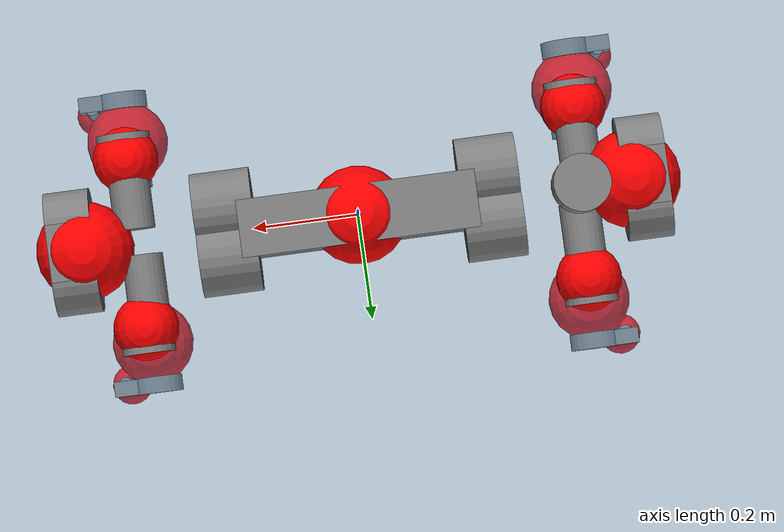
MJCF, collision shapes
<mujoco model="anymal_c">
  <compiler angle="radian" assetdir="assets" balanceinertia="true" inertiafromgeom="false"/>

  <option timestep="0.005" density="1.2" viscosity="2e-05"/>

  <size nkey="1"/>

  <visual>
    <quality shadowsize="8192"/>
    <map shadowclip="0.5"/>
  </visual>

  <default>
    <default class="/">
      <material specular="0" shininess="0.25"/>
      <geom contype="0" conaffinity="0" group="1" solref="-1000 -80"/>
      <site size="0.01 0.005 0.005" group="5"/>
      <general forcelimited="true" forcerange="-80 80" biastype="affine" gainprm="80" biasprm="0 -80 -2"/>
      <default class="anymal_c">
        <joint armature="0.01" damping="0.01" frictionloss="0.1"/>
        <default class="visual">
          <geom type="mesh" group="2"/>
          <default class="visual_zflip"/>
        </default>
        <default class="collision">
          <geom type="cylinder" group="3"/>
          <default class="foot">
            <geom size="0.03 0 0" type="sphere" condim="6" priority="1" friction="0.8 0.02 0.01" solimp="0.015 1 0.03"/>
          </default>
        </default>
      </default>
      <default class="reward_collision_sphere">
        <geom group="5" rgba="1 0 0 1"/>
      </default>
    </default>
  </default>

  <asset>
    <texture type="skybox" colorspace="auto" name="//unnamed_texture_0" builtin="gradient" rgb1="0.95 0.95 0.95" rgb2="0.95 0.95 0.95" width="100" height="600"/>
    <texture type="2d" colorspace="auto" name="texplane" builtin="checker" rgb1="0.345 0.575 0.748" rgb2="0.345 0.575 0.748" markrgb="1 1 1" width="512" height="512"/>
    <texture type="2d" colorspace="linear" name="base" file="base.png"/>
    <texture type="2d" colorspace="linear" name="top_shell" file="top_shell.png"/>
    <texture type="2d" colorspace="linear" name="bottom_shell" file="bottom_shell.png"/>
    <texture type="2d" colorspace="linear" name="remote" file="remote.png"/>
    <texture type="2d" colorspace="linear" name="hatch" file="hatch.png"/>
    <texture type="2d" colorspace="linear" name="handle" file="handle.png"/>
    <texture type="2d" colorspace="linear" name="face" file="face.png"/>
    <texture type="2d" colorspace="linear" name="battery" file="battery.png"/>
    <texture type="2d" colorspace="linear" name="lidar_cage" file="lidar_cage.png"/>
    <texture type="2d" colorspace="linear" name="depth_camera" file="depth_camera.png"/>
    <texture type="2d" colorspace="linear" name="wide_angle_camera" file="wide_angle_camera.png"/>
    <texture type="2d" colorspace="linear" name="lidar" file="lidar.png"/>
    <texture type="2d" colorspace="linear" name="drive" file="drive.png"/>
    <texture type="2d" colorspace="linear" name="hip_l" file="hip_l.png"/>
    <texture type="2d" colorspace="linear" name="shank_l" file="shank_l.png"/>
    <texture type="2d" colorspace="linear" name="foot" file="foot.png"/>
    <texture type="2d" colorspace="linear" name="thigh" file="thigh.png"/>
    <texture type="2d" colorspace="linear" name="shank_r" file="shank_r.png"/>
    <texture type="2d" colorspace="linear" name="hip_r" file="hip_r.png"/>
    <material name="MatPlane" class="/" texture="texplane" texuniform="true" texrepeat="2 2" specular="0.9" shininess="0.5"/>
    <material name="black_plastic" class="/" rgba="0.007 0.007 0.007 1"/>
    <material name="green" class="/" rgba="0.052 0.178 0.033 1"/>
    <material name="red" class="/" rgba="0.178 0.006 0.005 1"/>
    <material name="yellow" class="/" rgba="0.178 0.119 0.006 1"/>
    <material name="lwl" class="/" rgba="0.8 0.8 0.8 1"/>
    <material name="base" class="/" texture="base"/>
    <material name="top_shell" class="/" texture="top_shell"/>
    <material name="bottom_shell" class="/" texture="bottom_shell"/>
    <material name="hip_l" class="/" texture="hip_l"/>
    <material name="thigh" class="/" texture="thigh"/>
    <material name="shank_l" class="/" texture="shank_l"/>
    <material name="foot" class="/" texture="foot"/>
    <material name="hip_r" class="/" texture="hip_r"/>
    <material name="shank" class="/" texture="shank_r"/>
    <material name="hatch" class="/" texture="hatch"/>
    <material name="remote" class="/" texture="remote"/>
    <material name="handle" class="/" texture="handle"/>
    <material name="face" class="/" texture="face"/>
    <material name="depth_camera" class="/" texture="depth_camera"/>
    <material name="wide_angle_camera" class="/" texture="wide_angle_camera"/>
    <material name="battery" class="/" texture="battery"/>
    <material name="lidar_cage" class="/" texture="lidar_cage"/>
    <material name="lidar" class="/" texture="lidar"/>
    <material name="drive" class="/" texture="drive"/>
    <mesh name="base_0" class="/" file="base_0.obj"/>
    <mesh name="base_1" class="/" file="base_1.obj"/>
    <mesh name="base_2" class="/" file="base_2.obj"/>
    <mesh name="base_3" class="/" file="base_3.obj"/>
    <mesh name="base_4" class="/" file="base_4.obj"/>
    <mesh name="base_5" class="/" file="base_5.obj"/>
    <mesh name="top_shell" class="/" file="top_shell.obj"/>
    <mesh name="bottom_shell" class="/" file="bottom_shell.obj"/>
    <mesh name="remote" class="/" file="remote.obj"/>
    <mesh name="handle" class="/" file="handle.obj"/>
    <mesh name="face" class="/" file="face.obj"/>
    <mesh name="wide_angle_camera" class="/" file="wide_angle_camera.obj"/>
    <mesh name="depth_camera" class="/" file="depth_camera.obj"/>
    <mesh name="battery" class="/" file="battery.obj"/>
    <mesh name="lidar_cage" class="/" file="lidar_cage.obj"/>
    <mesh name="lidar" class="/" file="lidar.obj"/>
    <mesh name="drive" class="/" file="drive.obj"/>
    <mesh name="hip_l" class="/" file="hip_l.obj"/>
    <mesh name="thigh" class="/" file="thigh.obj"/>
    <mesh name="shank_l" class="/" file="shank_l.obj"/>
    <mesh name="foot" class="/" file="foot.obj"/>
    <mesh name="hip_r" class="/" file="hip_r.obj"/>
    <mesh name="hatch" class="/" file="hatch.obj"/>
    <mesh name="shank_r" class="/" file="shank_r.obj"/>
  </asset>

  <worldbody>
    <geom name="floor" class="/" size="100 100 0.125" type="plane" group="0" material="MatPlane"/>
    <light name="toplight_shadow" class="/" pos="0 0 5" dir="0.0990148 0.0990148 -0.990148" type="directional" ambient="0.04 0.04 0.04" diffuse="0.55 0.55 0.55" specular="0.12 0.12 0.12"/>
    <light name="toplight_fill" class="/" pos="0 0 5" dir="0.0990148 0.0990148 -0.990148" type="directional" castshadow="false" ambient="0.04 0.04 0.04" diffuse="0.3 0.3 0.3" specular="0.08 0.08 0.08"/>
    <body name="trunk" childclass="anymal_c" pos="-0.00056266 0.00143681 0.0126989" quat="0.999983 -0.00339956 0.00361151 -0.0030853">
      <inertial pos="0.00292389 -0.00987287 0.024287" quat="0.466074 0.531201 0.522886 0.476645" mass="8.39791" diaginertia="1.11948 0.0775337 0.00570521"/>
      <joint name="//unnamed_joint_0" type="free" armature="0" damping="0" frictionloss="0"/>
      <geom name="//unnamed_geom_1" class="visual" material="green" mesh="base_0"/>
      <geom name="//unnamed_geom_2" class="visual" material="yellow" mesh="base_1"/>
      <geom name="//unnamed_geom_3" class="visual" material="red" mesh="base_2"/>
      <geom name="//unnamed_geom_4" class="visual" material="black_plastic" mesh="base_3"/>
      <geom name="//unnamed_geom_5" class="visual" material="lwl" mesh="base_4"/>
      <geom name="//unnamed_geom_6" class="visual" material="base" mesh="base_5"/>
      <geom name="trunk_1" class="collision" size="0.226155 0.0545892 0.0701861" type="box"/>
      <geom name="trunk_2" class="collision" size="0.0701861 0.0565388" pos="0.252122 0.0476401 0" quat="0.707107 0 0.707107 0"/>
      <geom name="trunk_3" class="collision" size="0.0701861 0.0565388" pos="-0.252122 0.0476401 0" quat="0.707107 0 0.707107 0"/>
      <geom name="trunk_4" class="collision" size="0.0701861 0.0565388" pos="0.252122 -0.0476401 0" quat="0.707107 0 0.707107 0"/>
      <geom name="trunk_5" class="collision" size="0.0701861 0.0565388" pos="-0.252122 -0.0476401 0" quat="0.707107 0 0.707107 0"/>
      <geom name="//unnamed_geom_12" class="visual" material="top_shell" mesh="top_shell"/>
      <geom name="//unnamed_geom_13" class="visual" material="bottom_shell" mesh="bottom_shell"/>
      <geom name="//unnamed_geom_14" class="visual" material="remote" mesh="remote"/>
      <geom name="//unnamed_geom_15" class="visual" material="handle" mesh="handle"/>
      <geom name="//unnamed_geom_16" class="visual" pos="0.480481 0 0" quat="1 0 0 0" material="face" mesh="face"/>
      <geom name="trunk_6" class="collision" size="0.0428915 0.0545892 0.0701861" pos="0.544236 0 0" type="box"/>
      <geom name="//unnamed_geom_18" class="collision" size="0.0701861 0.0428915" pos="0.544236 0.0476401 0" quat="0.707107 0 0.707107 0"/>
      <geom name="//unnamed_geom_19" class="collision" size="0.0701861 0.0428915" pos="0.544236 -0.0476401 0" quat="0.707107 0 0.707107 0"/>
      <geom name="//unnamed_geom_20" class="visual" pos="0.535109 0 -0.00958221" quat="0.965926 0 0.258819 0" material="depth_camera" mesh="depth_camera"/>
      <geom name="//unnamed_geom_21" class="visual" pos="0.594661 0 0.00748174" material="wide_angle_camera" mesh="wide_angle_camera"/>
      <geom name="//unnamed_geom_22" class="visual_zflip" pos="-0.480481 0 0" quat="0 0 0 1" material="face" mesh="face"/>
      <geom name="trunk_7" class="collision" size="0.0428915 0.0545892 0.0701861" pos="-0.544236 0 0" quat="0 0 0 1" type="box"/>
      <geom name="//unnamed_geom_24" class="collision" size="0.0701861 0.0428915" pos="-0.544236 -0.0476401 0" quat="0 -0.707107 0 0.707107"/>
      <geom name="//unnamed_geom_25" class="collision" size="0.0701861 0.0428915" pos="-0.544236 0.0476401 0" quat="0 -0.707107 0 0.707107"/>
      <geom name="//unnamed_geom_26" class="visual" pos="-0.535109 0 -0.00958221" quat="0 -0.258819 0 0.965926" material="depth_camera" mesh="depth_camera"/>
      <geom name="//unnamed_geom_27" class="visual_zflip" pos="-0.594661 0 0.00748174" quat="0 0 0 1" material="wide_angle_camera" mesh="wide_angle_camera"/>
      <geom name="//unnamed_geom_28" class="visual" material="battery" mesh="battery"/>
      <geom name="//unnamed_geom_29" class="visual" pos="0 0.0457289 0.0195301" quat="0.683013 -0.183013 0.183013 0.683013" material="depth_camera" mesh="depth_camera"/>
      <geom name="//unnamed_geom_30" class="visual" pos="0 -0.0457289 0.0195301" quat="0.683013 0.183013 0.183013 -0.683013" material="depth_camera" mesh="depth_camera"/>
      <geom name="//unnamed_geom_31" class="visual" pos="-0.421942 0 0.036734" quat="1 0 0 0" material="lidar_cage" mesh="lidar_cage"/>
      <geom name="trunk_8" class="collision" size="0.0545892 0.0467908" pos="-0.421942 0 0.066721"/>
      <geom name="//unnamed_geom_33" class="visual" pos="-0.421942 -0.000188033 0.0710691" quat="0.707107 0 0 -0.707107" material="lidar" mesh="lidar"/>
      <geom name="//unnamed_geom_34" class="visual" pos="0.347639 0.0707153 3.11865e-09" quat="0.258819 0.965926 0 0" material="drive" mesh="drive"/>
      <geom name="//unnamed_geom_35" class="visual" pos="0.347639 -0.0707153 -3.11865e-09" quat="0.258819 -0.965926 0 0" material="drive" mesh="drive"/>
      <geom name="//unnamed_geom_36" class="visual" pos="-0.347639 0.0707153 -3.11865e-09" quat="0 0 0.965926 -0.258819" material="drive" mesh="drive"/>
      <geom name="//unnamed_geom_37" class="visual" pos="-0.347639 -0.0707153 3.11865e-09" quat="0 0 -0.965926 -0.258819" material="drive" mesh="drive"/>
      <geom name="//unnamed_geom_38" class="visual" pos="0.134465 0 0.0364841" quat="1 0 0 0" material="hatch" mesh="hatch"/>
      <geom name="//unnamed_geom_39" class="reward_collision_sphere" size="0.0935815"/>
      <geom name="//unnamed_geom_40" class="reward_collision_sphere" size="0.0935815" pos="0.521632 0 0"/>
      <geom name="//unnamed_geom_41" class="reward_collision_sphere" size="0.0935815" pos="-0.521632 0 0"/>
      <site name="imu" pos="0.280378 -0.0282635 0.0695243" size="0.00779846"/>
      <camera name="track" pos="0 -1.36115 0" quat="0.707107 0.707107 0 0" mode="trackcom"/>
      <camera name="ego_camera" pos="0.521632 0 -0.0199913" quat="-0.5 -0.5 0.5 0.5"/>
      <body name="LF_HIP" pos="0.347374 0.0670822 -0.00494022" quat="0.258693 0.96596 -0.000198331 0.000101117">
        <inertial pos="0.076829 -0.00834225 0.008097" quat="-0.109552 0.668653 -0.146072 0.720809" mass="1.41614" diaginertia="0.0118354 0.000807175 0.000111452"/>
        <joint name="LF_HAA" pos="0 0 0" axis="0.998624 -0.020338 -0.0483421" stiffness="0.0424533" range="-0.75071 0.365674" armature="0.00766766" damping="0.0507619" frictionloss="0.0540648"/>
        <geom name="//unnamed_geom_42" class="visual" pos="0 0.000183456 -3.01325e-05" quat="0.258819 -0.965926 0 0" material="hip_l" mesh="hip_l"/>
        <geom name="//unnamed_geom_43" class="visual" pos="0.0694351 -0.0777695 -0.043563" quat="0.183013 -0.683013 0.683013 0.183013" material="drive" mesh="drive"/>
        <geom name="//unnamed_geom_44" class="collision" size="0.0389923 0.0545892" pos="0.069435 -0.00813951 -0.003451" quat="-0.353553 -0.612372 0.612372 -0.353553"/>
        <body name="LF_THIGH" pos="0.0790454 -0.0549552 -0.0312231" quat="0.183516 -0.682834 0.682902 0.18359">
          <inertial pos="0.0363309 0.00177748 -0.123354" quat="0.994048 0.00132283 -0.0650598 0.0873711" mass="1.60327" diaginertia="0.0700509 0.00492038 0.000165562"/>
          <joint name="LF_HFE" pos="0 0 0" axis="0.999996 -0.00267406 -1.8222e-05" stiffness="0.0213574" range="-3.01177 3.13812" armature="0.010706" damping="0" frictionloss="0.07905"/>
          <geom name="//unnamed_geom_45" class="visual" pos="0.00952246 1.50052e-05 0" quat="0.707107 0 0 -0.707107" material="thigh" mesh="thigh"/>
          <geom name="//unnamed_geom_46" class="collision" size="0.05069 0.0311938" pos="0.0463673 0 0" quat="0.5 0.5 -0.5 -0.5"/>
          <geom name="//unnamed_geom_47" class="collision" size="0.0292442 0.0233954 0.110203" pos="0.0347755 0 -0.0706263" quat="0.707107 0 0 -0.707107" type="box"/>
          <geom name="//unnamed_geom_48" class="visual" pos="0.116266 0 -0.142438" quat="1 0 0 0" material="drive" mesh="drive"/>
          <geom name="//unnamed_geom_49" class="collision" size="0.0389923 0.0545892" pos="0.0351232 0 -0.142438" quat="0.707107 0 0.707107 0"/>
          <geom name="//unnamed_geom_50" class="reward_collision_sphere" size="0.0623877" pos="0.0289796 0 0"/>
          <body name="LF_SHANK" pos="0.113711 0.000840914 -0.138498" quat="1 0.000219704 -0.000183305 -0.00042643">
            <inertial pos="0.0201884 -0.0296674 -0.0390362" quat="0.992901 -0.116695 -0.00379067 -0.0227104" mass="0.280583" diaginertia="0.0240068 0.00133055 3.38429e-05"/>
            <joint name="LF_KFE" pos="0 0 0" axis="1 -0.000539445 -0.000395599" stiffness="0.000527491" range="-2.86803 3.00436" armature="0.0092551" damping="0.0190697" frictionloss="0.0269212"/>
            <geom name="//unnamed_geom_51" class="visual" pos="0.00310507 0.0165564 0" quat="0.707107 0 0 -0.707107" material="shank_l" mesh="shank_l"/>
            <geom name="LF_kfe_act" class="collision" size="0.0467908 0.0155969" pos="0.0231837 0 0" quat="0.5 0.5 -0.5 -0.5"/>
            <geom name="//unnamed_geom_53" class="collision" size="0.0448404 0.0263198 0.0148171" pos="0.0231837 -0.0391322 0" quat="0.5 0.5 -0.5 -0.5" type="box"/>
            <geom name="//unnamed_geom_54" class="visual" pos="0.0151266 -0.0545209 -0.168911" quat="0.382683 0 0 -0.92388" material="foot" mesh="foot"/>
            <geom name="LF_calf" class="collision" size="0.0136473 0.110155" pos="0.0151273 -0.0598564 -0.0844557" quat="0.707107 0 0 -0.707107"/>
            <geom name="LF_foot" class="foot" size="0.0299645" pos="0.0151273 -0.0598564 -0.157666" quat="0.707107 0 0 -0.707107"/>
            <geom name="//unnamed_geom_57" class="reward_collision_sphere" size="0.0779846" pos="-0.0579591 0 0"/>
            <geom name="//unnamed_geom_58" class="reward_collision_sphere" size="0.0389923" pos="0.0151273 -0.0598564 -0.157666"/>
            <site name="LF_foot" class="foot" pos="0.0151273 -0.0598564 -0.157666" quat="0.707107 0 0 -0.707107" size="0.00779846"/>
          </body>
        </body>
      </body>
      <body name="RF_HIP" pos="0.354151 -0.0741707 -0.00279639" quat="0.258148 -0.966083 -0.000125954 -0.00649938">
        <inertial pos="0.0702452 0.0116037 -0.00630915" quat="0.146455 0.687992 0.0650416 0.707805" mass="1.15211" diaginertia="0.0125548 0.000736634 0.000105838"/>
        <joint name="RF_HAA" pos="0 0 0" axis="0.999499 0.0217431 0.0229845" stiffness="0.0496176" range="-0.238497 0.843162" armature="0.00692907" damping="0.0450739" frictionloss="0.0485252"/>
        <geom name="//unnamed_geom_59" class="visual" pos="0 -0.000183455 -3.01324e-05" quat="0.258819 0.965926 0 0" material="hip_r" mesh="hip_r"/>
        <geom name="//unnamed_geom_60" class="visual" pos="0.069435 0.0777695 -0.043563" quat="0.183013 0.683013 0.683013 -0.183013" material="drive" mesh="drive"/>
        <geom name="//unnamed_geom_61" class="collision" size="0.0389923 0.0545892" pos="0.069435 0.00813951 -0.003451" quat="-0.353553 0.612372 0.612372 0.353553"/>
        <body name="RF_THIGH" pos="0.0709923 0.0562177 -0.0212322" quat="0.180708 0.683977 0.682603 -0.18323">
          <inertial pos="0.0412723 0.00116814 -0.119202" quat="0.990949 -0.00919373 -0.0903334 0.0988686" mass="1.27822" diaginertia="0.0634475 0.00484554 0.000121082"/>
          <joint name="RF_HFE" pos="0 0 0" axis="0.999994 -0.000364177 0.00339573" range="-3.12116 3.27277" armature="0.0100356" damping="0.0722574" frictionloss="0.114678"/>
          <geom name="//unnamed_geom_62" class="visual" pos="0.00952246 1.50052e-05 0" quat="0.707107 0 0 -0.707107" material="thigh" mesh="thigh"/>
          <geom name="//unnamed_geom_63" class="collision" size="0.05069 0.0311938" pos="0.0463673 0 0" quat="0.5 0.5 0.5 0.5"/>
          <geom name="//unnamed_geom_64" class="collision" size="0.0292442 0.0233954 0.110203" pos="0.0347755 0 -0.0706263" quat="0.707107 0 0 0.707107" type="box"/>
          <geom name="//unnamed_geom_65" class="visual" pos="0.116266 0 -0.142438" quat="1 0 0 0" material="drive" mesh="drive"/>
          <geom name="//unnamed_geom_66" class="collision" size="0.0389923 0.0545892" pos="0.0351232 0 -0.142438" quat="0.707107 0 0.707107 0"/>
          <geom name="//unnamed_geom_67" class="reward_collision_sphere" size="0.0623877" pos="0.0289796 0 0"/>
          <body name="RF_SHANK" pos="0.128729 -0.00196758 -0.140743" quat="1 -0.000346128 0.00087165 -0.000215419">
            <inertial pos="0.00899653 0.0530373 -0.049773" quat="0.992603 0.114029 -0.003099 -0.041557" mass="0.323473" diaginertia="0.0241596 0.0013358 4.35923e-05"/>
            <joint name="RF_KFE" pos="0 0 0" axis="0.999967 -0.000211634 -0.00812242" stiffness="0.00917651" range="-3.14372 3.15057" armature="0.00773307" damping="0.046658" frictionloss="0.100143"/>
            <geom name="//unnamed_geom_68" class="visual" pos="0.00310505 -0.0165563 0" quat="0.707107 0 0 0.707107" material="shank" mesh="shank_r"/>
            <geom name="RF_kfe_act" class="collision" size="0.0467908 0.0155969" pos="0.0231837 0 0" quat="0.5 0.5 0.5 0.5"/>
            <geom name="//unnamed_geom_70" class="collision" size="0.0448404 0.0263198 0.0148171" pos="0.0231837 0.0391322 0" quat="0.5 0.5 0.5 0.5" type="box"/>
            <geom name="//unnamed_geom_71" class="visual" pos="0.0151281 0.0545209 -0.168911" quat="0.382683 0 0 0.92388" material="foot" mesh="foot"/>
            <geom name="RF_calf" class="collision" size="0.0136473 0.110155" pos="0.0151273 0.0598564 -0.0844557" quat="0.707107 0 0 0.707107"/>
            <geom name="RF_foot" class="foot" size="0.0330822" pos="0.0151273 0.0598564 -0.157666" quat="0.707107 0 0 0.707107"/>
            <geom name="//unnamed_geom_74" class="reward_collision_sphere" size="0.0779846" pos="-0.0579591 0 0"/>
            <geom name="//unnamed_geom_75" class="reward_collision_sphere" size="0.0389923" pos="0.0151273 0.0598564 -0.157666"/>
            <site name="RF_foot" class="foot" pos="0.0151273 0.0598564 -0.157666" quat="0.707107 0 0 0.707107" size="0.00779846"/>
          </body>
        </body>
      </body>
      <body name="LH_HIP" pos="-0.347901 0.0787842 -0.00827707" quat="0.000342649 0.000511549 0.965515 -0.260346">
        <inertial pos="0.0691259 0.0215629 0.00862637" quat="0.122538 0.692252 0.133326 0.698567" mass="1.43462" diaginertia="0.0142255 0.000734505 0.000123947"/>
        <joint name="LH_HAA" pos="0 0 0" axis="0.998623 -0.00922766 0.0516353" range="-0.277856 0.491072" armature="0.00370516" damping="0.0214912" frictionloss="0.0732207"/>
        <geom name="//unnamed_geom_76" class="visual" pos="0 -0.000183455 -3.01324e-05" quat="-0.258819 -0.965926 0 0" material="hip_r" mesh="hip_r"/>
        <geom name="//unnamed_geom_77" class="visual" pos="0.069435 0.0777695 -0.043563" quat="0.183013 0.683013 0.683013 -0.183013" material="drive" mesh="drive"/>
        <geom name="//unnamed_geom_78" class="collision" size="0.0389923 0.0545892" pos="0.069435 0.00813951 -0.003451" quat="-0.353553 0.612372 0.612372 0.353553"/>
        <body name="LH_THIGH" pos="0.0694835 0.0598601 -0.0332764" quat="0.181744 0.683553 0.681761 -0.186885">
          <inertial pos="0.0222556 0.00865004 -0.109487" quat="0.99261 -0.00491258 -0.081708 0.0895814" mass="1.19118" diaginertia="0.044622 0.00356529 9.68683e-05"/>
          <joint name="LH_HFE" pos="0 0 0" axis="0.997778 -0.0283333 -0.0602975" range="-2.99033 3.15271" armature="0.00753808" damping="0.0732309" frictionloss="0.0576275"/>
          <geom name="//unnamed_geom_79" class="visual" pos="0.00952246 1.50052e-05 0" quat="0.707107 0 0 -0.707107" material="thigh" mesh="thigh"/>
          <geom name="//unnamed_geom_80" class="collision" size="0.05069 0.0311938" pos="0.0463673 0 0" quat="0.5 0.5 -0.5 -0.5"/>
          <geom name="//unnamed_geom_81" class="collision" size="0.0292442 0.0233954 0.110203" pos="0.0347755 0 -0.0706263" quat="0.707107 0 0 -0.707107" type="box"/>
          <geom name="//unnamed_geom_82" class="visual" pos="0.116266 0 -0.142438" quat="1 0 0 0" material="drive" mesh="drive"/>
          <geom name="//unnamed_geom_83" class="collision" size="0.0389923 0.0545892" pos="0.0351232 0 -0.142438" quat="0.707107 0 0.707107 0"/>
          <geom name="//unnamed_geom_84" class="reward_collision_sphere" size="0.0623877" pos="0.0289796 0 0"/>
          <body name="LH_SHANK" pos="0.123255 0.00185324 -0.135201" quat="0.999989 0.00264659 -0.003829 0.000178491">
            <inertial pos="0.0186765 0.0335409 -0.0273559" quat="0.98763 0.155251 -0.0198246 -0.00951398" mass="0.311122" diaginertia="0.023794 0.00160117 3.61944e-05"/>
            <joint name="LH_KFE" pos="0 0 0" axis="0.999999 0.000605454 -0.000897823" stiffness="0.00560148" range="-3.16597 3.41628" armature="0.00359724" damping="0.0688499" frictionloss="0.0729866"/>
            <geom name="//unnamed_geom_85" class="visual" pos="0.00310505 -0.0165563 0" quat="-0.707107 0 0 -0.707107" material="shank" mesh="shank_r"/>
            <geom name="LH_kfe_act" class="collision" size="0.0467908 0.0155969" pos="0.0231837 0 0" quat="0.5 0.5 -0.5 -0.5"/>
            <geom name="//unnamed_geom_87" class="collision" size="0.0448404 0.0263198 0.0148171" pos="0.0231837 0.0391322 0" quat="0.5 0.5 -0.5 -0.5" type="box"/>
            <geom name="//unnamed_geom_88" class="visual" pos="0.0151281 0.0545209 -0.168911" quat="-0.382683 0 0 -0.92388" material="foot" mesh="foot"/>
            <geom name="LH_calf" class="collision" size="0.0136473 0.110155" pos="0.0151273 0.0598564 -0.0844557" quat="0.707107 0 0 -0.707107"/>
            <geom name="LH_foot" class="foot" size="0.0196912" pos="0.0151273 0.0598564 -0.157666" quat="0.707107 0 0 -0.707107"/>
            <geom name="//unnamed_geom_91" class="reward_collision_sphere" size="0.0779846" pos="-0.0579591 0 0"/>
            <geom name="//unnamed_geom_92" class="reward_collision_sphere" size="0.0389923" pos="0.0151273 0.0598564 -0.157666"/>
            <site name="LH_foot" class="foot" pos="0.0151273 0.0598564 -0.157666" quat="0.707107 0 0 -0.707107" size="0.00779846"/>
          </body>
        </body>
      </body>
      <body name="RH_HIP" pos="-0.361298 -0.0703286 -0.0110565" quat="0.000702789 -0.000714978 -0.96559 -0.260068">
        <inertial pos="0.0753485 -0.00341868 -0.00518944" quat="-0.0764844 0.704017 -0.118136 0.696099" mass="1.30266" diaginertia="0.00876702 0.000613414 7.96564e-05"/>
        <joint name="RH_HAA" pos="0 0 0" axis="0.997624 0.0669718 -0.0161775" stiffness="0.000400465" range="-0.613025 0.487619" armature="0.00756114" damping="0.0224684" frictionloss="0.0250823"/>
        <geom name="//unnamed_geom_93" class="visual" pos="0 0.000183456 -3.01325e-05" quat="-0.258819 0.965926 0 0" material="hip_l" mesh="hip_l"/>
        <geom name="//unnamed_geom_94" class="visual" pos="0.0694351 -0.0777695 -0.043563" quat="-0.183013 0.683013 -0.683013 -0.183013" material="drive" mesh="drive"/>
        <geom name="//unnamed_geom_95" class="collision" size="0.0389923 0.0545892" pos="0.069435 -0.00813951 -0.003451" quat="0.353553 0.612372 -0.612372 0.353553"/>
        <body name="RH_THIGH" pos="0.0699364 -0.0526188 -0.0149746" quat="-0.183034 0.68312 -0.682869 -0.183128">
          <inertial pos="0.0308949 0.00620001 -0.111797" quat="0.992851 0.0326974 -0.0848487 0.0773181" mass="1.76953" diaginertia="0.0573573 0.00446587 0.000132112"/>
          <joint name="RH_HFE" pos="0 0 0" axis="0.999686 -0.00962695 0.0231272" range="-3.10687 3.32376" armature="0.00871036" damping="0.0235675" frictionloss="0.0885382"/>
          <geom name="//unnamed_geom_96" class="visual" pos="0.00952246 1.50052e-05 0" quat="0.707107 0 0 -0.707107" material="thigh" mesh="thigh"/>
          <geom name="//unnamed_geom_97" class="collision" size="0.05069 0.0311938" pos="0.0463673 0 0" quat="0.5 0.5 0.5 0.5"/>
          <geom name="//unnamed_geom_98" class="collision" size="0.0292442 0.0233954 0.110203" pos="0.0347755 0 -0.0706263" quat="0.707107 0 0 0.707107" type="box"/>
          <geom name="//unnamed_geom_99" class="visual" pos="0.116266 0 -0.142438" quat="1 0 0 0" material="drive" mesh="drive"/>
          <geom name="//unnamed_geom_100" class="collision" size="0.0389923 0.0545892" pos="0.0351232 0 -0.142438" quat="0.707107 0 0.707107 0"/>
          <geom name="//unnamed_geom_101" class="reward_collision_sphere" size="0.0623877" pos="0.0289796 0 0"/>
          <body name="RH_SHANK" pos="0.128046 -0.00901189 -0.133785" quat="0.999976 0.00327992 -0.000555335 0.00607727">
            <inertial pos="0.0028296 -0.0410477 -0.0400251" quat="0.989789 -0.137632 -0.0334713 0.0159378" mass="0.259696" diaginertia="0.019673 0.00113553 3.64888e-05"/>
            <joint name="RH_KFE" pos="0 0 0" axis="0.997837 -0.0151863 -0.0639517" stiffness="0.0586365" range="-3.35139 3.19094" armature="0.00835361" damping="0.0621566" frictionloss="0.0890962"/>
            <geom name="//unnamed_geom_102" class="visual" pos="0.00310507 0.0165564 0" quat="0.707107 0 0 -0.707107" material="shank_l" mesh="shank_l"/>
            <geom name="RH_kfe_act" class="collision" size="0.0467908 0.0155969" pos="0.0231837 0 0" quat="0.5 0.5 0.5 0.5"/>
            <geom name="//unnamed_geom_104" class="collision" size="0.0448404 0.0263198 0.0148171" pos="0.0231837 -0.0391322 0" quat="0.5 0.5 0.5 0.5" type="box"/>
            <geom name="//unnamed_geom_105" class="visual" pos="0.0151266 -0.0545209 -0.168911" quat="0.382683 0 0 -0.92388" material="foot" mesh="foot"/>
            <geom name="RH_calf" class="collision" size="0.0136473 0.110155" pos="0.0151273 -0.0598564 -0.0844557" quat="0.707107 0 0 0.707107"/>
            <geom name="RH_foot" class="foot" size="0.0258105" pos="0.0151273 -0.0598564 -0.157666" quat="0.707107 0 0 0.707107"/>
            <geom name="//unnamed_geom_108" class="reward_collision_sphere" size="0.0779846" pos="-0.0579591 0 0"/>
            <geom name="//unnamed_geom_109" class="reward_collision_sphere" size="0.0389923" pos="0.0151273 -0.0598564 -0.157666"/>
            <site name="RH_foot" class="foot" pos="0.0151273 -0.0598564 -0.157666" quat="0.707107 0 0 0.707107" size="0.00779846"/>
          </body>
        </body>
      </body>
    </body>
  </worldbody>

  <contact>
    <pair class="/" geom1="floor" geom2="LF_foot" name="//unnamed_contact_0"/>
    <pair class="/" geom1="floor" geom2="RF_foot" name="//unnamed_contact_1"/>
    <pair class="/" geom1="floor" geom2="LH_foot" name="//unnamed_contact_2"/>
    <pair class="/" geom1="floor" geom2="RH_foot" name="//unnamed_contact_3"/>
  </contact>

  <actuator>
    <general name="LF_HAA" class="/" joint="LF_HAA" forcerange="-60.1177 60.1177" gainprm="59.6339" biasprm="0 -59.6339 -1.85716"/>
    <general name="LF_HFE" class="/" joint="LF_HFE" forcerange="-59.0549 59.0549" gainprm="59.6339" biasprm="0 -59.6339 -1.85716"/>
    <general name="LF_KFE" class="/" joint="LF_KFE" forcerange="-46.9722 46.9722" gainprm="59.6339" biasprm="0 -59.6339 -1.85716"/>
    <general name="RF_HAA" class="/" joint="RF_HAA" forcerange="-65.1663 65.1663" gainprm="59.6339" biasprm="0 -59.6339 -1.85716"/>
    <general name="RF_HFE" class="/" joint="RF_HFE" forcerange="-47.7121 47.7121" gainprm="59.6339" biasprm="0 -59.6339 -1.85716"/>
    <general name="RF_KFE" class="/" joint="RF_KFE" forcerange="-58.8962 58.8962" gainprm="59.6339" biasprm="0 -59.6339 -1.85716"/>
    <general name="LH_HAA" class="/" joint="LH_HAA" forcerange="-60.6549 60.6549" gainprm="59.6339" biasprm="0 -59.6339 -1.85716"/>
    <general name="LH_HFE" class="/" joint="LH_HFE" forcerange="-91.7713 91.7713" gainprm="59.6339" biasprm="0 -59.6339 -1.85716"/>
    <general name="LH_KFE" class="/" joint="LH_KFE" forcerange="-36.2694 36.2694" gainprm="59.6339" biasprm="0 -59.6339 -1.85716"/>
    <general name="RH_HAA" class="/" joint="RH_HAA" forcerange="-63.3066 63.3066" gainprm="59.6339" biasprm="0 -59.6339 -1.85716"/>
    <general name="RH_HFE" class="/" joint="RH_HFE" forcerange="-71.5846 71.5846" gainprm="59.6339" biasprm="0 -59.6339 -1.85716"/>
    <general name="RH_KFE" class="/" joint="RH_KFE" forcerange="-45.9993 45.9993" gainprm="59.6339" biasprm="0 -59.6339 -1.85716"/>
  </actuator>

  <sensor>
    <gyro site="imu" name="imu_angular_velocity"/>
    <velocimeter site="imu" name="imu_linear_velocity"/>
    <framelinvel objtype="site" objname="LF_foot" name="LF_foot_global_linear_velocity"/>
    <framelinvel objtype="site" objname="RF_foot" name="RF_foot_global_linear_velocity"/>
    <framelinvel objtype="site" objname="LH_foot" name="LH_foot_global_linear_velocity"/>
    <framelinvel objtype="site" objname="RH_foot" name="RH_foot_global_linear_velocity"/>
  </sensor>

  <keyframe>
    <key name="home" qpos="0 0 0.55 1 0 0 0 0 0.4 -0.8 0 -0.4 0.8 0 -0.4 0.8 0 0.4 -0.8"/>
  </keyframe>
</mujoco>
